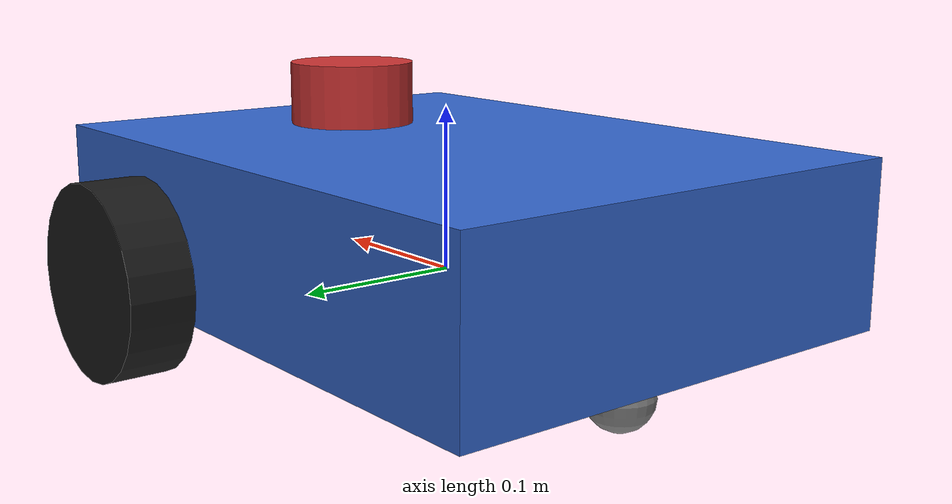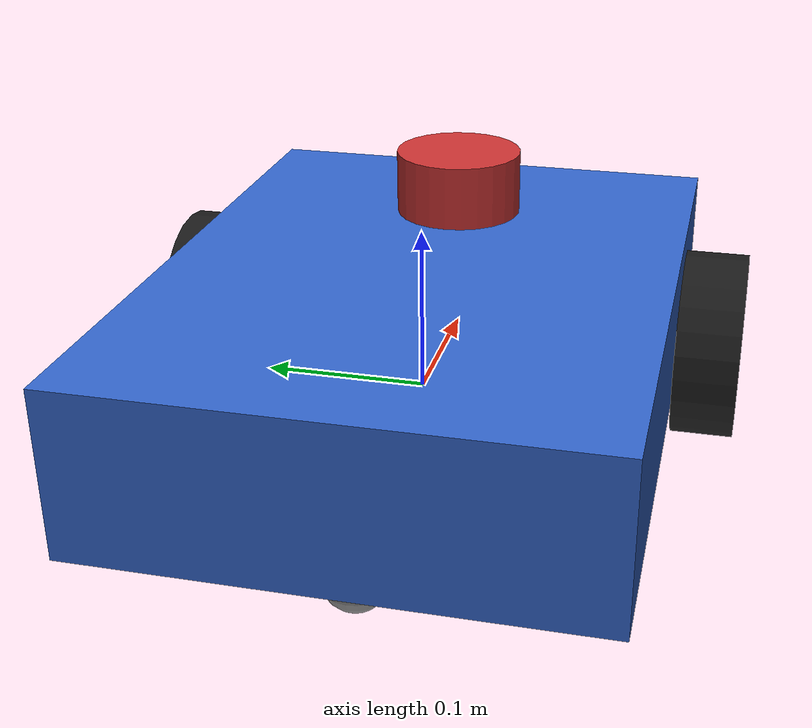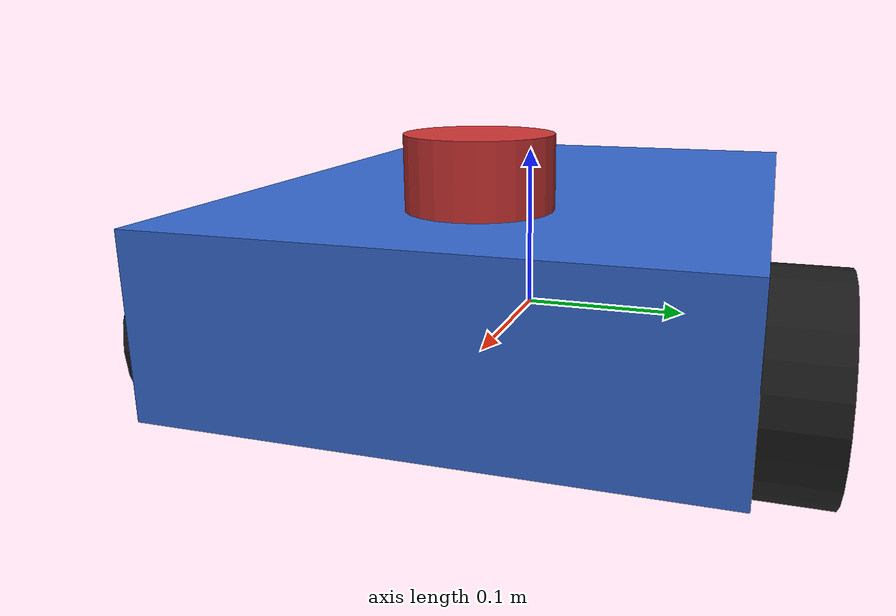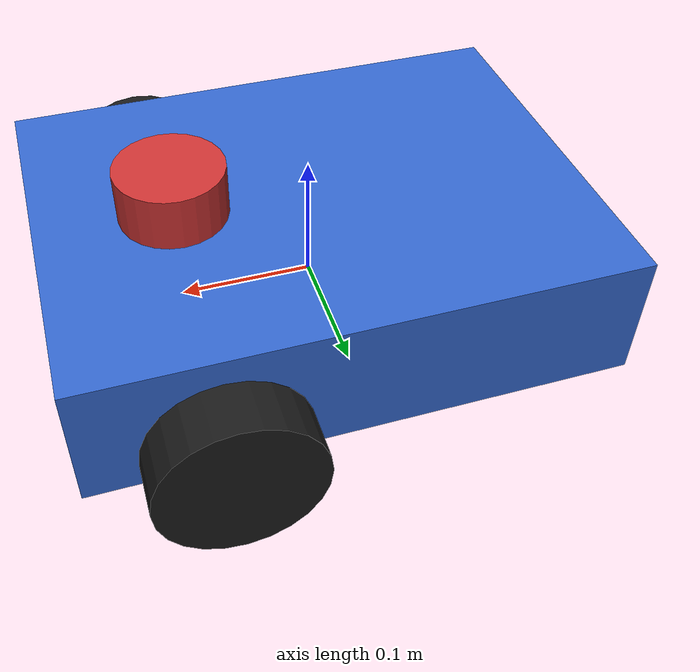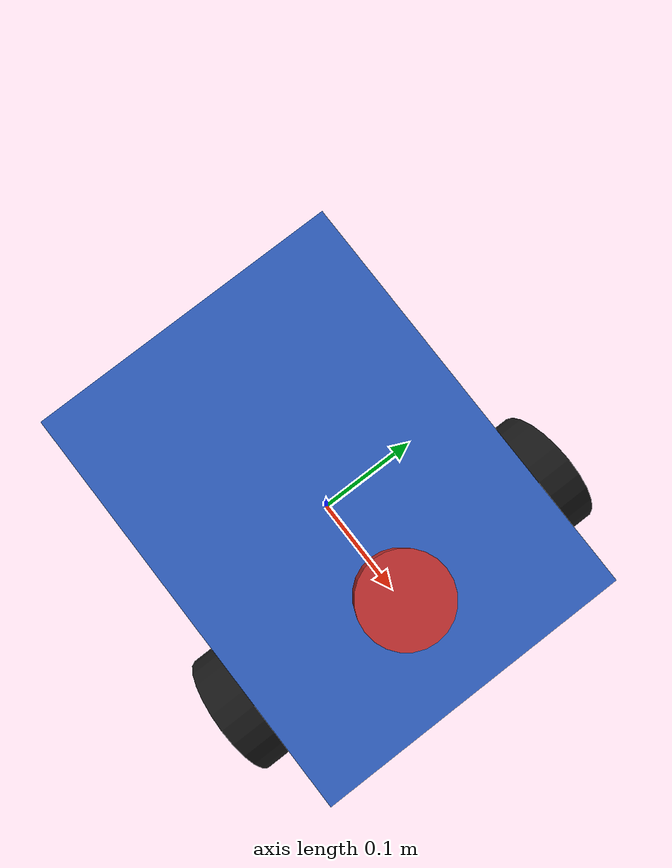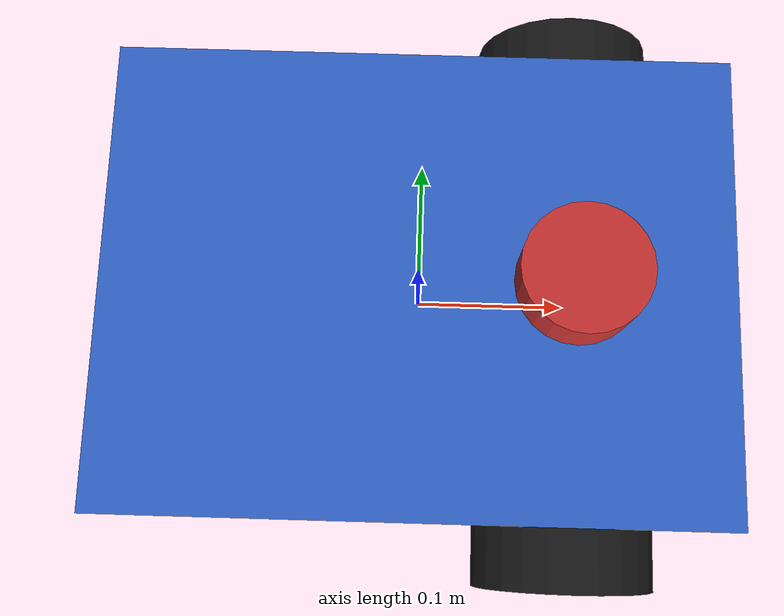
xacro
<?xml version="1.0"?>
<robot xmlns:xacro="http://www.ros.org/wiki/xacro" name="rover">

  <xacro:property name="pi_val" value="3.14159265359"/>

  <xacro:property name="chassis_length" value="0.40"/>
  <xacro:property name="chassis_width"  value="0.30"/>
  <xacro:property name="chassis_height" value="0.10"/>
  <xacro:property name="chassis_mass"   value="5.0"/>

  <xacro:property name="wheel_radius"   value="0.06"/>
  <xacro:property name="wheel_width"    value="0.04"/>
  <xacro:property name="wheel_mass"     value="0.5"/>
  <xacro:property name="wheel_x_offset" value="0.10"/>

  <xacro:property name="caster_radius"  value="0.02"/>
  <xacro:property name="caster_mass"    value="0.1"/>
  <xacro:property name="caster_x_offset" value="-0.15"/>

  <xacro:property name="lidar_radius"   value="0.04"/>
  <xacro:property name="lidar_height"   value="0.04"/>
  <xacro:property name="lidar_mass"     value="0.2"/>

  <!-- Derived: chassis floats above base_link so it clears the ground -->
  <xacro:property name="chassis_z" value="0.03"/>

  <!-- ============================================================
       INERTIA MACROS - standard formulas, do not guess these
       ============================================================ -->
  <xacro:macro name="box_inertia" params="m x y z">
    <inertial>
      <mass value="${m}"/>
      <inertia ixx="${m*(y*y+z*z)/12}" ixy="0" ixz="0"
               iyy="${m*(x*x+z*z)/12}" iyz="0"
               izz="${m*(x*x+y*y)/12}"/>
    </inertial>
  </xacro:macro>

  <xacro:macro name="cylinder_inertia" params="m r h">
    <inertial>
      <origin xyz="0 0 0" rpy="${pi_val/2} 0 0"/>
      <mass value="${m}"/>
      <inertia ixx="${m*(3*r*r+h*h)/12}" ixy="0" ixz="0"
               iyy="${m*(3*r*r+h*h)/12}" iyz="0"
               izz="${m*r*r/2}"/>
    </inertial>
  </xacro:macro>

  <xacro:macro name="sphere_inertia" params="m r">
    <inertial>
      <mass value="${m}"/>
      <inertia ixx="${2*m*r*r/5}" ixy="0" ixz="0"
               iyy="${2*m*r*r/5}" iyz="0"
               izz="${2*m*r*r/5}"/>
    </inertial>
  </xacro:macro>

  <!-- ============================================================
       MATERIALS
       ============================================================ -->
  <material name="blue">  <color rgba="0.2 0.4 0.8 1.0"/></material>
  <material name="black"> <color rgba="0.1 0.1 0.1 1.0"/></material>
  <material name="grey">  <color rgba="0.5 0.5 0.5 1.0"/></material>
  <material name="red">   <color rgba="0.8 0.2 0.2 1.0"/></material>

  <link name="base_link"/>

  <link name="base_footprint"/>

  <joint name="base_footprint_joint" type="fixed">
    <parent link="base_link"/>
    <child  link="base_footprint"/>
    <origin xyz="0 0 ${-wheel_radius}" rpy="0 0 0"/>
  </joint>

  <!-- ============================================================
       CHASSIS
       ============================================================ -->
  <link name="chassis">
    <visual>
      <geometry>
        <box size="${chassis_length} ${chassis_width} ${chassis_height}"/>
      </geometry>
      <material name="blue"/>
    </visual>
    <collision>
      <geometry>
        <box size="${chassis_length} ${chassis_width} ${chassis_height}"/>
      </geometry>
    </collision>
    <xacro:box_inertia m="${chassis_mass}"
                       x="${chassis_length}"
                       y="${chassis_width}"
                       z="${chassis_height}"/>
  </link>

  <joint name="chassis_joint" type="fixed">
    <parent link="base_link"/>
    <child  link="chassis"/>
    <origin xyz="0 0 ${chassis_z}" rpy="0 0 0"/>
  </joint>

  <xacro:macro name="drive_wheel" params="prefix reflect">
    <link name="${prefix}_wheel">
      <visual>
        <origin xyz="0 0 0" rpy="${pi_val/2} 0 0"/>
        <geometry>
          <cylinder radius="${wheel_radius}" length="${wheel_width}"/>
        </geometry>
        <material name="black"/>
      </visual>
      <collision>
        <origin xyz="0 0 0" rpy="${pi_val/2} 0 0"/>
        <geometry>
          <cylinder radius="${wheel_radius}" length="${wheel_width}"/>
        </geometry>
      </collision>
      <xacro:cylinder_inertia m="${wheel_mass}"
                              r="${wheel_radius}"
                              h="${wheel_width}"/>
    </link>

    <joint name="${prefix}_wheel_joint" type="continuous">
      <parent link="base_link"/>
      <child  link="${prefix}_wheel"/>
      <origin xyz="${wheel_x_offset} ${reflect*(chassis_width/2 + wheel_width/2)} 0"
              rpy="0 0 0"/>
      <axis xyz="0 1 0"/>
    </joint>
  </xacro:macro>

  <xacro:drive_wheel prefix="left"  reflect="1"/>
  <xacro:drive_wheel prefix="right" reflect="-1"/>

  <!-- ============================================================
       CASTER - passive support at the rear
       ============================================================ -->
  <link name="caster_wheel">
    <visual>
      <geometry><sphere radius="${caster_radius}"/></geometry>
      <material name="grey"/>
    </visual>
    <collision>
      <geometry><sphere radius="${caster_radius}"/></geometry>
    </collision>
    <xacro:sphere_inertia m="${caster_mass}" r="${caster_radius}"/>
  </link>

  <joint name="caster_joint" type="fixed">
    <parent link="base_link"/>
    <child  link="caster_wheel"/>
    <origin xyz="${caster_x_offset} 0 ${caster_radius - wheel_radius}" rpy="0 0 0"/>
  </joint>

  <!-- ============================================================
       LIDAR - mounted on top of the chassis
       ============================================================ -->
  <link name="lidar_link">
    <visual>
      <geometry>
        <cylinder radius="${lidar_radius}" length="${lidar_height}"/>
      </geometry>
      <material name="red"/>
    </visual>
    <collision>
      <geometry>
        <cylinder radius="${lidar_radius}" length="${lidar_height}"/>
      </geometry>
    </collision>
    <inertial>
      <mass value="${lidar_mass}"/>
      <inertia ixx="${lidar_mass*(3*lidar_radius*lidar_radius+lidar_height*lidar_height)/12}" ixy="0" ixz="0"
               iyy="${lidar_mass*(3*lidar_radius*lidar_radius+lidar_height*lidar_height)/12}" iyz="0"
               izz="${lidar_mass*lidar_radius*lidar_radius/2}"/>
    </inertial>
  </link>

  <joint name="lidar_joint" type="fixed">
    <parent link="chassis"/>
    <child  link="lidar_link"/>
    <origin xyz="0.10 0 ${chassis_height/2 + lidar_height/2}" rpy="0 0 0"/>
  </joint>

  <!-- Surface friction: wheels grip, caster slides -->
  <gazebo reference="left_wheel">
    <mu1>1.0</mu1>
    <mu2>1.0</mu2>
  </gazebo>

  <gazebo reference="right_wheel">
    <mu1>1.0</mu1>
    <mu2>1.0</mu2>
  </gazebo>

  <gazebo reference="caster_wheel">
    <mu1>0.001</mu1>
    <mu2>0.001</mu2>
  </gazebo>

  <!-- Visual colours in Gazebo (separate from URDF materials) -->
  <gazebo reference="chassis">
    <material>Gazebo/Blue</material>
  </gazebo>

  <gazebo>
    <plugin filename="gz-sim-diff-drive-system"
            name="gz::sim::systems::DiffDrive">
      <left_joint>left_wheel_joint</left_joint>
      <right_joint>right_wheel_joint</right_joint>
      <wheel_separation>${2*(chassis_width/2 + wheel_width/2)}</wheel_separation>
      <wheel_radius>${wheel_radius}</wheel_radius>
      <odom_publish_frequency>50</odom_publish_frequency>
      <topic>cmd_vel</topic>
      <odom_topic>odom</odom_topic>
      <tf_topic>/tf</tf_topic>
      <frame_id>odom</frame_id>
      <child_frame_id>base_link</child_frame_id>
      <max_linear_acceleration>1.0</max_linear_acceleration>
      <min_linear_acceleration>-1.0</min_linear_acceleration>
      <max_angular_acceleration>2.0</max_angular_acceleration>
      <min_angular_acceleration>-2.0</min_angular_acceleration>
    </plugin>
  </gazebo>

  <!-- Publishes wheel joint angles so RViz shows the wheels turning -->
  <gazebo>
    <plugin filename="gz-sim-joint-state-publisher-system"
            name="gz::sim::systems::JointStatePublisher">
      <topic>joint_states</topic>
      <joint_name>left_wheel_joint</joint_name>
      <joint_name>right_wheel_joint</joint_name>
    </plugin>
  </gazebo>

  <gazebo reference="lidar_link">
    <sensor name="lidar" type="gpu_lidar">
      <pose relative_to="lidar_link">0 0 0 0 0 0</pose>
      <topic>scan</topic>
      <gz_frame_id>lidar_link</gz_frame_id>
      <update_rate>10</update_rate>
      <always_on>true</always_on>
      <visualize>true</visualize>
      <lidar>
        <scan>
          <horizontal>
            <samples>360</samples>
            <resolution>1</resolution>
            <min_angle>-3.14159</min_angle>
            <max_angle>3.14159</max_angle>
          </horizontal>
        </scan>
        <range>
          <min>0.12</min>
          <max>10.0</max>
          <resolution>0.01</resolution>
        </range>
        <noise>
          <type>gaussian</type>
          <mean>0.0</mean>
          <stddev>0.01</stddev>
        </noise>
      </lidar>
    </sensor>
  </gazebo>

</robot>
